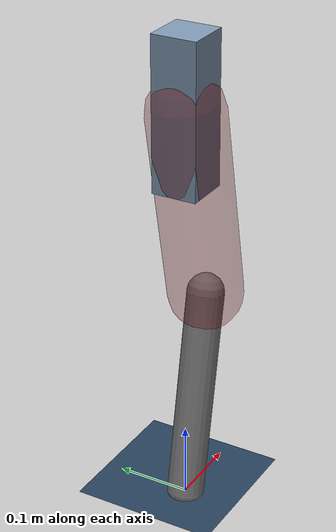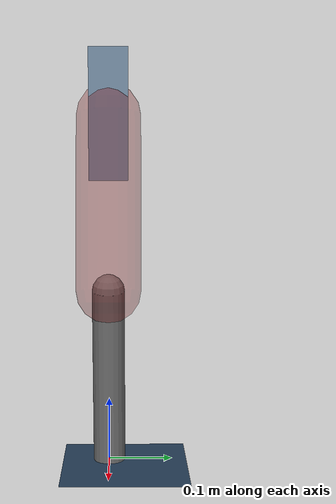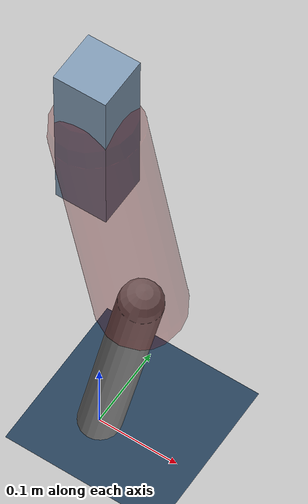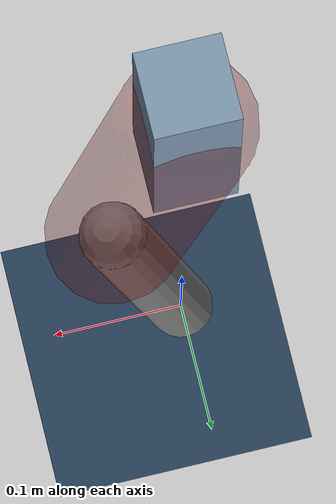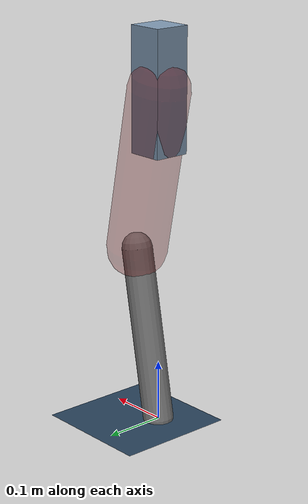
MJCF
<mujoco model="Hopper2D">
	<compiler inertiafromgeom="true" angle="radian" />
	<option timestep="0.001" integrator="implicit" cone="elliptic" solver="Newton" tolerance="1e-10" />

	<default>
		<geom contype="1" conaffinity="1" condim="3" friction="2 0.005 0.0001" solref="0.005 1" />
		<joint limited="true" damping="0.1" />
	</default>

	<asset>
		<texture name="skybox" type="skybox" builtin="gradient" rgb1=".4 .6 .8" rgb2="0 0 0" width="800" height="800" />
		<texture name="grid" type="2d" builtin="checker" rgb1=".1 .2 .3" rgb2=".2 .3 .4" width="300" height="300" mark="edge" markrgb=".2 .3 .4" />
		<material name="ground" texture="grid" texrepeat="1 1" texuniform="true" reflectance="0.1" />
		<material name="leg" rgba="0.5 0.6 0.7 1" />
	</asset>

	<worldbody>

		<geom name="floor" type="plane" size="5 5 0.25" material="ground" />

		<light directional="false" diffuse="0.8 0.8 0.8" specular="0.3 0.3 0.3" pos="0 0 2" dir="0 0 -1" />
		<light mode="targetbodycom" target="base" directional="false" diffuse="0.8 0.8 0.8" specular="0.3 0.3 0.3" pos="0 0 2" dir="0 0 -1" />

		<camera name="fixed" pos="0 -2 1" xyaxes="1 0 0 0 0 1" />
		<camera name="tracking" mode="trackcom" pos="0 -3 1" />

		<body name="root" pos="0 0 0.5493244236761183">
			<joint name="slide_x" type="slide" axis="1 0 0" range="-100 100" />
			<joint name="slide_z" type="slide" axis="0 0 1" range="0 10" />

			<body name="base" pos="0 0 0">
				<geom name="torso" type="box" size="0.03 0.03 0.1" mass="1.6019999999999999" material="leg" />

				<body name="link1" pos="0 0 0" euler="0 1.3754600451073578 0">
					<joint type="hinge" axis="0 -1 0" pos="0 0 0" name="hinge1" limited="true" range="-3.14 3.14" stiffness="0" damping="0.1" />
					<geom name="thigh" type="capsule" fromto="0 0 0 0.27110567675376296 0 0" size="0.05" rgba="0.5 0 0 0.3" mass="0.9115747595597836" />

					<body name="link2" pos="0.27110567675376296 0 0" euler="0 0.3789379685047851 0">
						<joint type="hinge" axis="0 -1 0" pos="0 0 0" name="hinge2" limited="true" range="-3.14 3.14" stiffness="0" damping="0.1" />
						<geom name="shank" type="capsule" fromto="0 0 0 0.2882187469223554 0 0" size="0.025" mass="0.4738749975378843" />

					</body>
				</body>
			</body>
		</body>
	</worldbody>

	<actuator>
		<motor name="torque1" joint="hinge1" ctrlrange="-12.77472702290892 12.77472702290892" ctrllimited="true" gear="1" />
		<motor name="torque2" joint="hinge2" ctrlrange="-42.86268255561284 42.86268255561284" ctrllimited="true" gear="1" />
	</actuator>
</mujoco>
